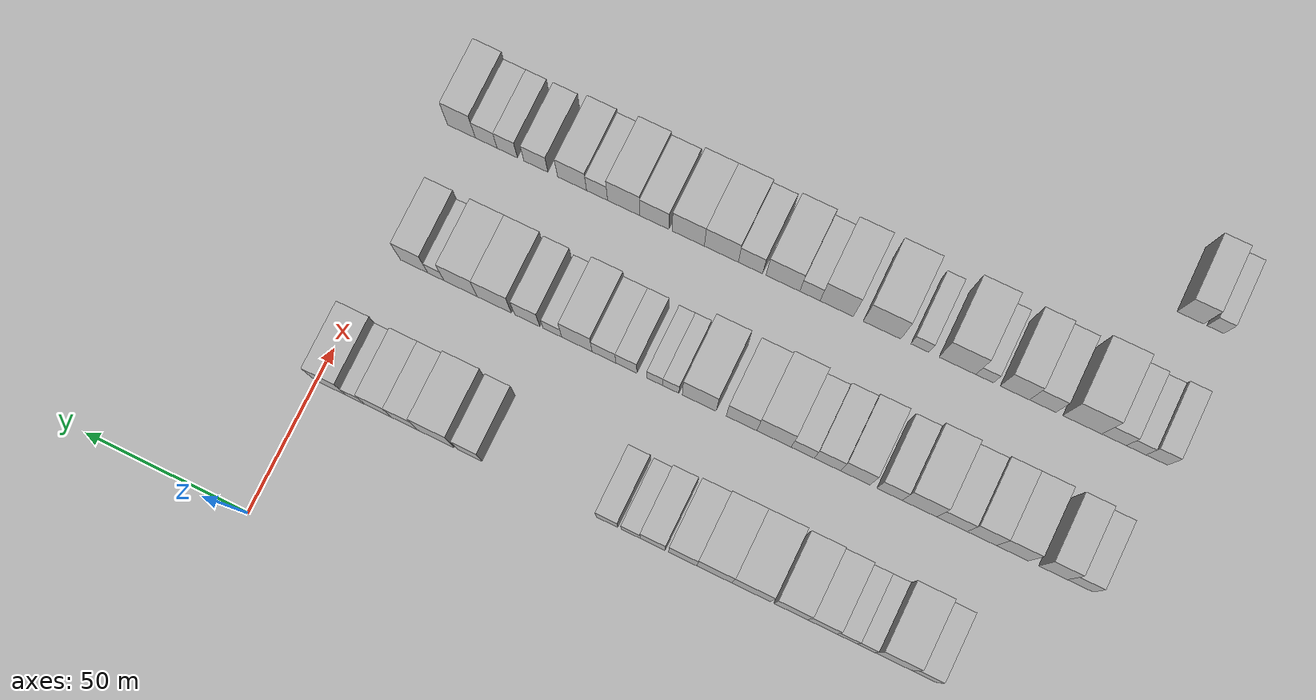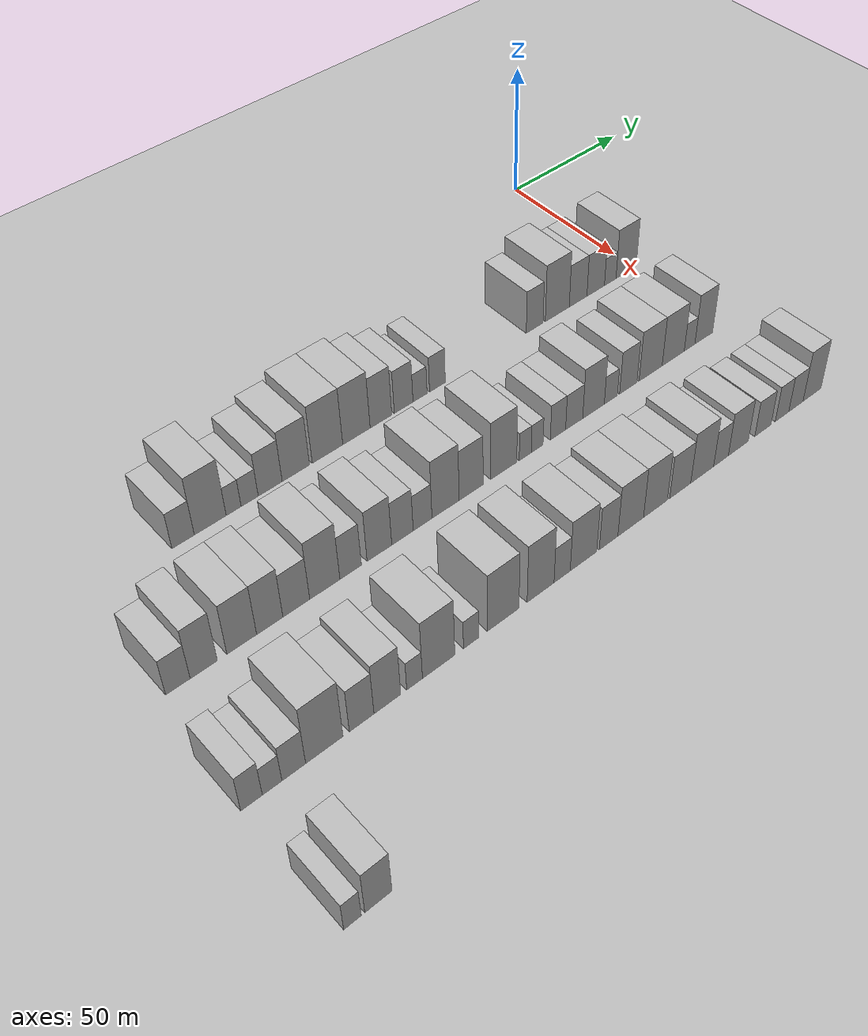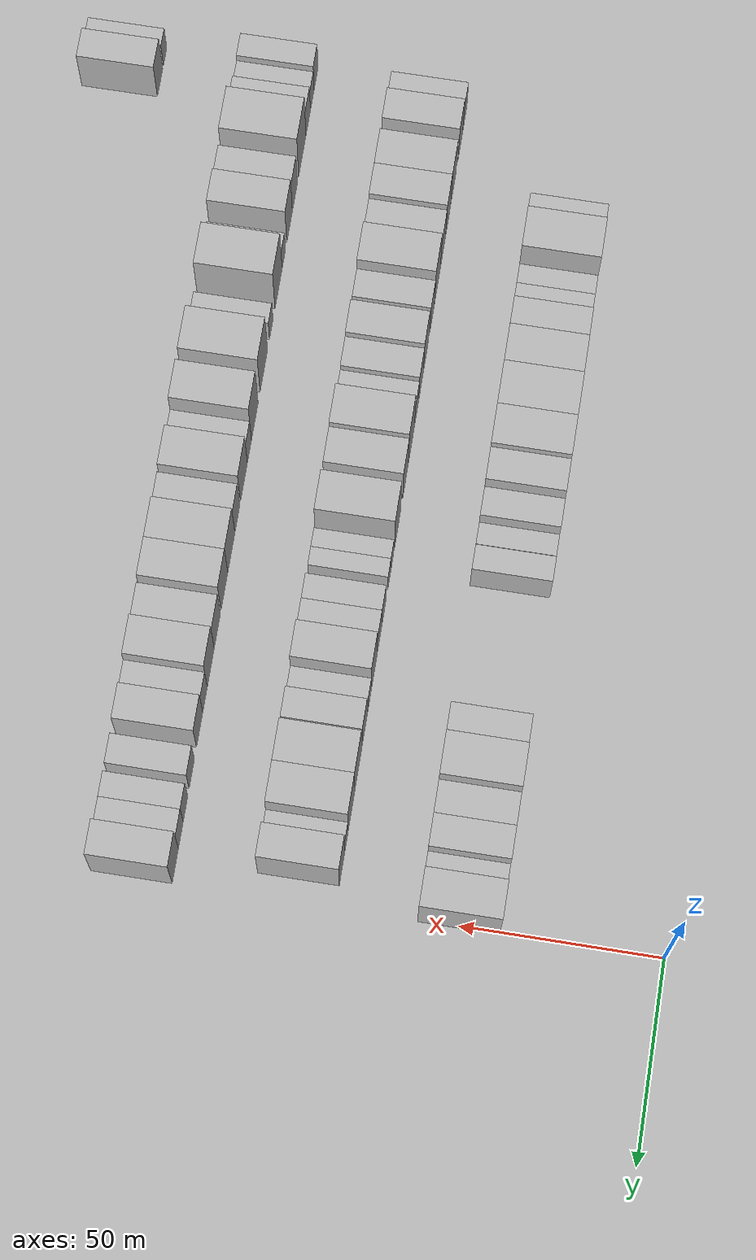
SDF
<sdf version="1.6">
 <world name="default">
  <include><name>ground_plane_1</name><uri>model://HANNAS_ground_plane</uri></include>
  <include>
   <name>ground_plane_2</name>
   <uri>model://HANNAS_ground_plane</uri>
   <pose>100 0 0  0 0 0</pose>
  </include>
  <model name="building_44">
   <static>1</static>
   <pose>50.0000 -181.8507 0 0.000000 0.000000 0.000000</pose>
   <link name="link">
    <pose>0 0 7.50 0 0 0</pose>
    <collision name="collision"><geometry><box><size>20.0000 7.4621 15.0000</size></box></geometry></collision>
    <visual name="visual">
     <cast_shadows>0</cast_shadows>
     <geometry><box><size>20.0000 7.4621 15.0000</size></box></geometry>
     <material>
      <script>
       <uri>model://HANNAS_wall/materials/scripts</uri>
       <uri>model://HANNAS_wall/materials/textures</uri>
       <name>vrc/HANNAS_wall</name>
      </script>
     </material>
    </visual>
   </link>
  </model>
  <model name="building_45">
   <static>1</static>
   <pose>50.0000 -172.7117 0 0.000000 0.000000 0.000000</pose>
   <link name="link">
    <pose>0 0 12.00 0 0 0</pose>
    <collision name="collision"><geometry><box><size>20.0000 10.8159 24.0000</size></box></geometry></collision>
    <visual name="visual">
     <cast_shadows>0</cast_shadows>
     <geometry><box><size>20.0000 10.8159 24.0000</size></box></geometry>
     <material>
      <script>
       <uri>model://HANNAS_wall/materials/scripts</uri>
       <uri>model://HANNAS_wall/materials/textures</uri>
       <name>vrc/HANNAS_wall</name>
      </script>
     </material>
    </visual>
   </link>
  </model>
  <model name="building_46">
   <static>1</static>
   <pose>50.0000 -164.7321 0 0.000000 0.000000 0.000000</pose>
   <link name="link">
    <pose>0 0 6.00 0 0 0</pose>
    <collision name="collision"><geometry><box><size>20.0000 5.1432 12.0000</size></box></geometry></collision>
    <visual name="visual">
     <cast_shadows>0</cast_shadows>
     <geometry><box><size>20.0000 5.1432 12.0000</size></box></geometry>
     <material>
      <script>
       <uri>model://HANNAS_wall/materials/scripts</uri>
       <uri>model://HANNAS_wall/materials/textures</uri>
       <name>vrc/HANNAS_wall</name>
      </script>
     </material>
    </visual>
   </link>
  </model>
  <model name="building_47">
   <static>1</static>
   <pose>50.0000 -159.1735 0 0.000000 0.000000 0.000000</pose>
   <link name="link">
    <pose>0 0 6.00 0 0 0</pose>
    <collision name="collision"><geometry><box><size>20.0000 5.9740 12.0000</size></box></geometry></collision>
    <visual name="visual">
     <cast_shadows>0</cast_shadows>
     <geometry><box><size>20.0000 5.9740 12.0000</size></box></geometry>
     <material>
      <script>
       <uri>model://HANNAS_wall/materials/scripts</uri>
       <uri>model://HANNAS_wall/materials/textures</uri>
       <name>vrc/HANNAS_wall</name>
      </script>
     </material>
    </visual>
   </link>
  </model>
  <model name="building_48">
   <static>1</static>
   <pose>50.0000 -151.9219 0 0.000000 0.000000 0.000000</pose>
   <link name="link">
    <pose>0 0 9.00 0 0 0</pose>
    <collision name="collision"><geometry><box><size>20.0000 8.5291 18.0000</size></box></geometry></collision>
    <visual name="visual">
     <cast_shadows>0</cast_shadows>
     <geometry><box><size>20.0000 8.5291 18.0000</size></box></geometry>
     <material>
      <script>
       <uri>model://HANNAS_wall/materials/scripts</uri>
       <uri>model://HANNAS_wall/materials/textures</uri>
       <name>vrc/HANNAS_wall</name>
      </script>
     </material>
    </visual>
   </link>
  </model>
  <model name="building_49">
   <static>1</static>
   <pose>50.0000 -142.6936 0 0.000000 0.000000 0.000000</pose>
   <link name="link">
    <pose>0 0 10.50 0 0 0</pose>
    <collision name="collision"><geometry><box><size>20.0000 9.9275 21.0000</size></box></geometry></collision>
    <visual name="visual">
     <cast_shadows>0</cast_shadows>
     <geometry><box><size>20.0000 9.9275 21.0000</size></box></geometry>
     <material>
      <script>
       <uri>model://HANNAS_wall/materials/scripts</uri>
       <uri>model://HANNAS_wall/materials/textures</uri>
       <name>vrc/HANNAS_wall</name>
      </script>
     </material>
    </visual>
   </link>
  </model>
  <model name="building_50">
   <static>1</static>
   <pose>50.0000 -131.0511 0 0.000000 0.000000 0.000000</pose>
   <link name="link">
    <pose>0 0 12.00 0 0 0</pose>
    <collision name="collision"><geometry><box><size>20.0000 11.3575 24.0000</size></box></geometry></collision>
    <visual name="visual">
     <cast_shadows>0</cast_shadows>
     <geometry><box><size>20.0000 11.3575 24.0000</size></box></geometry>
     <material>
      <script>
       <uri>model://HANNAS_wall/materials/scripts</uri>
       <uri>model://HANNAS_wall/materials/textures</uri>
       <name>vrc/HANNAS_wall</name>
      </script>
     </material>
    </visual>
   </link>
  </model>
  <model name="building_51">
   <static>1</static>
   <pose>50.0000 -120.1484 0 0.000000 0.000000 0.000000</pose>
   <link name="link">
    <pose>0 0 12.00 0 0 0</pose>
    <collision name="collision"><geometry><box><size>20.0000 10.4479 24.0000</size></box></geometry></collision>
    <visual name="visual">
     <cast_shadows>0</cast_shadows>
     <geometry><box><size>20.0000 10.4479 24.0000</size></box></geometry>
     <material>
      <script>
       <uri>model://HANNAS_wall/materials/scripts</uri>
       <uri>model://HANNAS_wall/materials/textures</uri>
       <name>vrc/HANNAS_wall</name>
      </script>
     </material>
    </visual>
   </link>
  </model>
  <model name="building_52">
   <static>1</static>
   <pose>50.0000 -110.7239 0 0.000000 0.000000 0.000000</pose>
   <link name="link">
    <pose>0 0 10.50 0 0 0</pose>
    <collision name="collision"><geometry><box><size>20.0000 8.4012 21.0000</size></box></geometry></collision>
    <visual name="visual">
     <cast_shadows>0</cast_shadows>
     <geometry><box><size>20.0000 8.4012 21.0000</size></box></geometry>
     <material>
      <script>
       <uri>model://HANNAS_wall/materials/scripts</uri>
       <uri>model://HANNAS_wall/materials/textures</uri>
       <name>vrc/HANNAS_wall</name>
      </script>
     </material>
    </visual>
   </link>
  </model>
  <model name="building_53">
   <static>1</static>
   <pose>50.0000 -101.8063 0 0.000000 0.000000 0.000000</pose>
   <link name="link">
    <pose>0 0 9.00 0 0 0</pose>
    <collision name="collision"><geometry><box><size>20.0000 7.4339 18.0000</size></box></geometry></collision>
    <visual name="visual">
     <cast_shadows>0</cast_shadows>
     <geometry><box><size>20.0000 7.4339 18.0000</size></box></geometry>
     <material>
      <script>
       <uri>model://HANNAS_wall/materials/scripts</uri>
       <uri>model://HANNAS_wall/materials/textures</uri>
       <name>vrc/HANNAS_wall</name>
      </script>
     </material>
    </visual>
   </link>
  </model>
  <model name="building_54">
   <static>1</static>
   <pose>50.0000 -95.2591 0 0.000000 0.000000 0.000000</pose>
   <link name="link">
    <pose>0 0 6.00 0 0 0</pose>
    <collision name="collision"><geometry><box><size>20.0000 5.6604 12.0000</size></box></geometry></collision>
    <visual name="visual">
     <cast_shadows>0</cast_shadows>
     <geometry><box><size>20.0000 5.6604 12.0000</size></box></geometry>
     <material>
      <script>
       <uri>model://HANNAS_wall/materials/scripts</uri>
       <uri>model://HANNAS_wall/materials/textures</uri>
       <name>vrc/HANNAS_wall</name>
      </script>
     </material>
    </visual>
   </link>
  </model>
  <model name="building_55">
   <static>1</static>
   <pose>50.0000 -88.2091 0 0.000000 0.000000 0.000000</pose>
   <link name="link">
    <pose>0 0 7.50 0 0 0</pose>
    <collision name="collision"><geometry><box><size>20.0000 6.4397 15.0000</size></box></geometry></collision>
    <visual name="visual">
     <cast_shadows>0</cast_shadows>
     <geometry><box><size>20.0000 6.4397 15.0000</size></box></geometry>
     <material>
      <script>
       <uri>model://HANNAS_wall/materials/scripts</uri>
       <uri>model://HANNAS_wall/materials/textures</uri>
       <name>vrc/HANNAS_wall</name>
      </script>
     </material>
    </visual>
   </link>
  </model>
  <model name="building_56">
   <static>1</static>
   <pose>50.0000 -46.7908 0 0.000000 0.000000 0.000000</pose>
   <link name="link">
    <pose>0 0 9.00 0 0 0</pose>
    <collision name="collision"><geometry><box><size>20.0000 7.4656 18.0000</size></box></geometry></collision>
    <visual name="visual">
     <cast_shadows>0</cast_shadows>
     <geometry><box><size>20.0000 7.4656 18.0000</size></box></geometry>
     <material>
      <script>
       <uri>model://HANNAS_wall/materials/scripts</uri>
       <uri>model://HANNAS_wall/materials/textures</uri>
       <name>vrc/HANNAS_wall</name>
      </script>
     </material>
    </visual>
   </link>
  </model>
  <model name="building_57">
   <static>1</static>
   <pose>50.0000 -36.6233 0 0.000000 0.000000 0.000000</pose>
   <link name="link">
    <pose>0 0 12.00 0 0 0</pose>
    <collision name="collision"><geometry><box><size>20.0000 10.8695 24.0000</size></box></geometry></collision>
    <visual name="visual">
     <cast_shadows>0</cast_shadows>
     <geometry><box><size>20.0000 10.8695 24.0000</size></box></geometry>
     <material>
      <script>
       <uri>model://HANNAS_wall/materials/scripts</uri>
       <uri>model://HANNAS_wall/materials/textures</uri>
       <name>vrc/HANNAS_wall</name>
      </script>
     </material>
    </visual>
   </link>
  </model>
  <model name="building_58">
   <static>1</static>
   <pose>50.0000 -27.0975 0 0.000000 0.000000 0.000000</pose>
   <link name="link">
    <pose>0 0 9.00 0 0 0</pose>
    <collision name="collision"><geometry><box><size>20.0000 8.1821 18.0000</size></box></geometry></collision>
    <visual name="visual">
     <cast_shadows>0</cast_shadows>
     <geometry><box><size>20.0000 8.1821 18.0000</size></box></geometry>
     <material>
      <script>
       <uri>model://HANNAS_wall/materials/scripts</uri>
       <uri>model://HANNAS_wall/materials/textures</uri>
       <name>vrc/HANNAS_wall</name>
      </script>
     </material>
    </visual>
   </link>
  </model>
  <model name="building_59">
   <static>1</static>
   <pose>50.0000 -18.8867 0 0.000000 0.000000 0.000000</pose>
   <link name="link">
    <pose>0 0 9.00 0 0 0</pose>
    <collision name="collision"><geometry><box><size>20.0000 8.2396 18.0000</size></box></geometry></collision>
    <visual name="visual">
     <cast_shadows>0</cast_shadows>
     <geometry><box><size>20.0000 8.2396 18.0000</size></box></geometry>
     <material>
      <script>
       <uri>model://HANNAS_wall/materials/scripts</uri>
       <uri>model://HANNAS_wall/materials/textures</uri>
       <name>vrc/HANNAS_wall</name>
      </script>
     </material>
    </visual>
   </link>
  </model>
  <model name="building_60">
   <static>1</static>
   <pose>50.0000 -12.0094 0 0.000000 0.000000 0.000000</pose>
   <link name="link">
    <pose>0 0 6.00 0 0 0</pose>
    <collision name="collision"><geometry><box><size>20.0000 5.5149 12.0000</size></box></geometry></collision>
    <visual name="visual">
     <cast_shadows>0</cast_shadows>
     <geometry><box><size>20.0000 5.5149 12.0000</size></box></geometry>
     <material>
      <script>
       <uri>model://HANNAS_wall/materials/scripts</uri>
       <uri>model://HANNAS_wall/materials/textures</uri>
       <name>vrc/HANNAS_wall</name>
      </script>
     </material>
    </visual>
   </link>
  </model>
  <model name="building_61">
   <static>1</static>
   <pose>50.0000 -4.3880 0 0.000000 0.000000 0.000000</pose>
   <link name="link">
    <pose>0 0 10.50 0 0 0</pose>
    <collision name="collision"><geometry><box><size>20.0000 9.7278 21.0000</size></box></geometry></collision>
    <visual name="visual">
     <cast_shadows>0</cast_shadows>
     <geometry><box><size>20.0000 9.7278 21.0000</size></box></geometry>
     <material>
      <script>
       <uri>model://HANNAS_wall/materials/scripts</uri>
       <uri>model://HANNAS_wall/materials/textures</uri>
       <name>vrc/HANNAS_wall</name>
      </script>
     </material>
    </visual>
   </link>
  </model>
  <model name="building_172">
   <static>1</static>
   <pose>90.0000 -209.5371 0 0.000000 0.000000 0.000000</pose>
   <link name="link">
    <pose>0 0 7.50 0 0 0</pose>
    <collision name="collision"><geometry><box><size>20.0000 7.4824 15.0000</size></box></geometry></collision>
    <visual name="visual">
     <cast_shadows>0</cast_shadows>
     <geometry><box><size>20.0000 7.4824 15.0000</size></box></geometry>
     <material>
      <script>
       <uri>model://HANNAS_wall/materials/scripts</uri>
       <uri>model://HANNAS_wall/materials/textures</uri>
       <name>vrc/HANNAS_wall</name>
      </script>
     </material>
    </visual>
   </link>
  </model>
  <model name="building_173">
   <static>1</static>
   <pose>90.0000 -201.5894 0 0.000000 0.000000 0.000000</pose>
   <link name="link">
    <pose>0 0 10.50 0 0 0</pose>
    <collision name="collision"><geometry><box><size>20.0000 8.4130 21.0000</size></box></geometry></collision>
    <visual name="visual">
     <cast_shadows>0</cast_shadows>
     <geometry><box><size>20.0000 8.4130 21.0000</size></box></geometry>
     <material>
      <script>
       <uri>model://HANNAS_wall/materials/scripts</uri>
       <uri>model://HANNAS_wall/materials/textures</uri>
       <name>vrc/HANNAS_wall</name>
      </script>
     </material>
    </visual>
   </link>
  </model>
  <model name="building_174">
   <static>1</static>
   <pose>90.0000 -189.6379 0 0.000000 0.000000 0.000000</pose>
   <link name="link">
    <pose>0 0 10.50 0 0 0</pose>
    <collision name="collision"><geometry><box><size>20.0000 9.4900 21.0000</size></box></geometry></collision>
    <visual name="visual">
     <cast_shadows>0</cast_shadows>
     <geometry><box><size>20.0000 9.4900 21.0000</size></box></geometry>
     <material>
      <script>
       <uri>model://HANNAS_wall/materials/scripts</uri>
       <uri>model://HANNAS_wall/materials/textures</uri>
       <name>vrc/HANNAS_wall</name>
      </script>
     </material>
    </visual>
   </link>
  </model>
  <model name="building_175">
   <static>1</static>
   <pose>90.0000 -180.6091 0 0.000000 0.000000 0.000000</pose>
   <link name="link">
    <pose>0 0 10.50 0 0 0</pose>
    <collision name="collision"><geometry><box><size>20.0000 8.5676 21.0000</size></box></geometry></collision>
    <visual name="visual">
     <cast_shadows>0</cast_shadows>
     <geometry><box><size>20.0000 8.5676 21.0000</size></box></geometry>
     <material>
      <script>
       <uri>model://HANNAS_wall/materials/scripts</uri>
       <uri>model://HANNAS_wall/materials/textures</uri>
       <name>vrc/HANNAS_wall</name>
      </script>
     </material>
    </visual>
   </link>
  </model>
  <model name="building_176">
   <static>1</static>
   <pose>90.0000 -171.8597 0 0.000000 0.000000 0.000000</pose>
   <link name="link">
    <pose>0 0 9.00 0 0 0</pose>
    <collision name="collision"><geometry><box><size>20.0000 8.9312 18.0000</size></box></geometry></collision>
    <visual name="visual">
     <cast_shadows>0</cast_shadows>
     <geometry><box><size>20.0000 8.9312 18.0000</size></box></geometry>
     <material>
      <script>
       <uri>model://HANNAS_wall/materials/scripts</uri>
       <uri>model://HANNAS_wall/materials/textures</uri>
       <name>vrc/HANNAS_wall</name>
      </script>
     </material>
    </visual>
   </link>
  </model>
  <model name="building_177">
   <static>1</static>
   <pose>90.0000 -162.2467 0 0.000000 0.000000 0.000000</pose>
   <link name="link">
    <pose>0 0 12.00 0 0 0</pose>
    <collision name="collision"><geometry><box><size>20.0000 10.2948 24.0000</size></box></geometry></collision>
    <visual name="visual">
     <cast_shadows>0</cast_shadows>
     <geometry><box><size>20.0000 10.2948 24.0000</size></box></geometry>
     <material>
      <script>
       <uri>model://HANNAS_wall/materials/scripts</uri>
       <uri>model://HANNAS_wall/materials/textures</uri>
       <name>vrc/HANNAS_wall</name>
      </script>
     </material>
    </visual>
   </link>
  </model>
  <model name="building_178">
   <static>1</static>
   <pose>90.0000 -153.3565 0 0.000000 0.000000 0.000000</pose>
   <link name="link">
    <pose>0 0 9.00 0 0 0</pose>
    <collision name="collision"><geometry><box><size>20.0000 7.4857 18.0000</size></box></geometry></collision>
    <visual name="visual">
     <cast_shadows>0</cast_shadows>
     <geometry><box><size>20.0000 7.4857 18.0000</size></box></geometry>
     <material>
      <script>
       <uri>model://HANNAS_wall/materials/scripts</uri>
       <uri>model://HANNAS_wall/materials/textures</uri>
       <name>vrc/HANNAS_wall</name>
      </script>
     </material>
    </visual>
   </link>
  </model>
  <model name="building_179">
   <static>1</static>
   <pose>90.0000 -143.2158 0 0.000000 0.000000 0.000000</pose>
   <link name="link">
    <pose>0 0 10.50 0 0 0</pose>
    <collision name="collision"><geometry><box><size>20.0000 8.7957 21.0000</size></box></geometry></collision>
    <visual name="visual">
     <cast_shadows>0</cast_shadows>
     <geometry><box><size>20.0000 8.7957 21.0000</size></box></geometry>
     <material>
      <script>
       <uri>model://HANNAS_wall/materials/scripts</uri>
       <uri>model://HANNAS_wall/materials/textures</uri>
       <name>vrc/HANNAS_wall</name>
      </script>
     </material>
    </visual>
   </link>
  </model>
  <model name="building_180">
   <static>1</static>
   <pose>90.0000 -134.9126 0 0.000000 0.000000 0.000000</pose>
   <link name="link">
    <pose>0 0 9.00 0 0 0</pose>
    <collision name="collision"><geometry><box><size>20.0000 7.8108 18.0000</size></box></geometry></collision>
    <visual name="visual">
     <cast_shadows>0</cast_shadows>
     <geometry><box><size>20.0000 7.8108 18.0000</size></box></geometry>
     <material>
      <script>
       <uri>model://HANNAS_wall/materials/scripts</uri>
       <uri>model://HANNAS_wall/materials/textures</uri>
       <name>vrc/HANNAS_wall</name>
      </script>
     </material>
    </visual>
   </link>
  </model>
  <model name="building_181">
   <static>1</static>
   <pose>90.0000 -127.5355 0 0.000000 0.000000 0.000000</pose>
   <link name="link">
    <pose>0 0 7.50 0 0 0</pose>
    <collision name="collision"><geometry><box><size>20.0000 6.9433 15.0000</size></box></geometry></collision>
    <visual name="visual">
     <cast_shadows>0</cast_shadows>
     <geometry><box><size>20.0000 6.9433 15.0000</size></box></geometry>
     <material>
      <script>
       <uri>model://HANNAS_wall/materials/scripts</uri>
       <uri>model://HANNAS_wall/materials/textures</uri>
       <name>vrc/HANNAS_wall</name>
      </script>
     </material>
    </visual>
   </link>
  </model>
  <model name="building_182">
   <static>1</static>
   <pose>90.0000 -118.9391 0 0.000000 0.000000 0.000000</pose>
   <link name="link">
    <pose>0 0 12.00 0 0 0</pose>
    <collision name="collision"><geometry><box><size>20.0000 10.2496 24.0000</size></box></geometry></collision>
    <visual name="visual">
     <cast_shadows>0</cast_shadows>
     <geometry><box><size>20.0000 10.2496 24.0000</size></box></geometry>
     <material>
      <script>
       <uri>model://HANNAS_wall/materials/scripts</uri>
       <uri>model://HANNAS_wall/materials/textures</uri>
       <name>vrc/HANNAS_wall</name>
      </script>
     </material>
    </visual>
   </link>
  </model>
  <model name="building_183">
   <static>1</static>
   <pose>90.0000 -109.1921 0 0.000000 0.000000 0.000000</pose>
   <link name="link">
    <pose>0 0 10.50 0 0 0</pose>
    <collision name="collision"><geometry><box><size>20.0000 9.2444 21.0000</size></box></geometry></collision>
    <visual name="visual">
     <cast_shadows>0</cast_shadows>
     <geometry><box><size>20.0000 9.2444 21.0000</size></box></geometry>
     <material>
      <script>
       <uri>model://HANNAS_wall/materials/scripts</uri>
       <uri>model://HANNAS_wall/materials/textures</uri>
       <name>vrc/HANNAS_wall</name>
      </script>
     </material>
    </visual>
   </link>
  </model>
  <model name="building_184">
   <static>1</static>
   <pose>90.0000 -96.4363 0 0.000000 0.000000 0.000000</pose>
   <link name="link">
    <pose>0 0 12.00 0 0 0</pose>
    <collision name="collision"><geometry><box><size>20.0000 10.2672 24.0000</size></box></geometry></collision>
    <visual name="visual">
     <cast_shadows>0</cast_shadows>
     <geometry><box><size>20.0000 10.2672 24.0000</size></box></geometry>
     <material>
      <script>
       <uri>model://HANNAS_wall/materials/scripts</uri>
       <uri>model://HANNAS_wall/materials/textures</uri>
       <name>vrc/HANNAS_wall</name>
      </script>
     </material>
    </visual>
   </link>
  </model>
  <model name="building_185">
   <static>1</static>
   <pose>90.0000 -87.8635 0 0.000000 0.000000 0.000000</pose>
   <link name="link">
    <pose>0 0 6.00 0 0 0</pose>
    <collision name="collision"><geometry><box><size>20.0000 4.8784 12.0000</size></box></geometry></collision>
    <visual name="visual">
     <cast_shadows>0</cast_shadows>
     <geometry><box><size>20.0000 4.8784 12.0000</size></box></geometry>
     <material>
      <script>
       <uri>model://HANNAS_wall/materials/scripts</uri>
       <uri>model://HANNAS_wall/materials/textures</uri>
       <name>vrc/HANNAS_wall</name>
      </script>
     </material>
    </visual>
   </link>
  </model>
  <model name="building_186">
   <static>1</static>
   <pose>90.0000 -83.0223 0 0.000000 0.000000 0.000000</pose>
   <link name="link">
    <pose>0 0 6.00 0 0 0</pose>
    <collision name="collision"><geometry><box><size>20.0000 4.8039 12.0000</size></box></geometry></collision>
    <visual name="visual">
     <cast_shadows>0</cast_shadows>
     <geometry><box><size>20.0000 4.8039 12.0000</size></box></geometry>
     <material>
      <script>
       <uri>model://HANNAS_wall/materials/scripts</uri>
       <uri>model://HANNAS_wall/materials/textures</uri>
       <name>vrc/HANNAS_wall</name>
      </script>
     </material>
    </visual>
   </link>
  </model>
  <model name="building_187">
   <static>1</static>
   <pose>90.0000 -74.4276 0 0.000000 0.000000 0.000000</pose>
   <link name="link">
    <pose>0 0 7.50 0 0 0</pose>
    <collision name="collision"><geometry><box><size>20.0000 6.3855 15.0000</size></box></geometry></collision>
    <visual name="visual">
     <cast_shadows>0</cast_shadows>
     <geometry><box><size>20.0000 6.3855 15.0000</size></box></geometry>
     <material>
      <script>
       <uri>model://HANNAS_wall/materials/scripts</uri>
       <uri>model://HANNAS_wall/materials/textures</uri>
       <name>vrc/HANNAS_wall</name>
      </script>
     </material>
    </visual>
   </link>
  </model>
  <model name="building_188">
   <static>1</static>
   <pose>90.0000 -67.6226 0 0.000000 0.000000 0.000000</pose>
   <link name="link">
    <pose>0 0 7.50 0 0 0</pose>
    <collision name="collision"><geometry><box><size>20.0000 7.2245 15.0000</size></box></geometry></collision>
    <visual name="visual">
     <cast_shadows>0</cast_shadows>
     <geometry><box><size>20.0000 7.2245 15.0000</size></box></geometry>
     <material>
      <script>
       <uri>model://HANNAS_wall/materials/scripts</uri>
       <uri>model://HANNAS_wall/materials/textures</uri>
       <name>vrc/HANNAS_wall</name>
      </script>
     </material>
    </visual>
   </link>
  </model>
  <model name="building_189">
   <static>1</static>
   <pose>90.0000 -59.3624 0 0.000000 0.000000 0.000000</pose>
   <link name="link">
    <pose>0 0 10.50 0 0 0</pose>
    <collision name="collision"><geometry><box><size>20.0000 9.2959 21.0000</size></box></geometry></collision>
    <visual name="visual">
     <cast_shadows>0</cast_shadows>
     <geometry><box><size>20.0000 9.2959 21.0000</size></box></geometry>
     <material>
      <script>
       <uri>model://HANNAS_wall/materials/scripts</uri>
       <uri>model://HANNAS_wall/materials/textures</uri>
       <name>vrc/HANNAS_wall</name>
      </script>
     </material>
    </visual>
   </link>
  </model>
  <model name="building_190">
   <static>1</static>
   <pose>90.0000 -51.8709 0 0.000000 0.000000 0.000000</pose>
   <link name="link">
    <pose>0 0 6.00 0 0 0</pose>
    <collision name="collision"><geometry><box><size>20.0000 5.6871 12.0000</size></box></geometry></collision>
    <visual name="visual">
     <cast_shadows>0</cast_shadows>
     <geometry><box><size>20.0000 5.6871 12.0000</size></box></geometry>
     <material>
      <script>
       <uri>model://HANNAS_wall/materials/scripts</uri>
       <uri>model://HANNAS_wall/materials/textures</uri>
       <name>vrc/HANNAS_wall</name>
      </script>
     </material>
    </visual>
   </link>
  </model>
  <model name="building_191">
   <static>1</static>
   <pose>90.0000 -44.1942 0 0.000000 0.000000 0.000000</pose>
   <link name="link">
    <pose>0 0 9.00 0 0 0</pose>
    <collision name="collision"><geometry><box><size>20.0000 7.6661 18.0000</size></box></geometry></collision>
    <visual name="visual">
     <cast_shadows>0</cast_shadows>
     <geometry><box><size>20.0000 7.6661 18.0000</size></box></geometry>
     <material>
      <script>
       <uri>model://HANNAS_wall/materials/scripts</uri>
       <uri>model://HANNAS_wall/materials/textures</uri>
       <name>vrc/HANNAS_wall</name>
      </script>
     </material>
    </visual>
   </link>
  </model>
  <model name="building_192">
   <static>1</static>
   <pose>90.0000 -34.1247 0 0.000000 0.000000 0.000000</pose>
   <link name="link">
    <pose>0 0 10.50 0 0 0</pose>
    <collision name="collision"><geometry><box><size>20.0000 10.4730 21.0000</size></box></geometry></collision>
    <visual name="visual">
     <cast_shadows>0</cast_shadows>
     <geometry><box><size>20.0000 10.4730 21.0000</size></box></geometry>
     <material>
      <script>
       <uri>model://HANNAS_wall/materials/scripts</uri>
       <uri>model://HANNAS_wall/materials/textures</uri>
       <name>vrc/HANNAS_wall</name>
      </script>
     </material>
    </visual>
   </link>
  </model>
  <model name="building_193">
   <static>1</static>
   <pose>90.0000 -23.7587 0 0.000000 0.000000 0.000000</pose>
   <link name="link">
    <pose>0 0 10.50 0 0 0</pose>
    <collision name="collision"><geometry><box><size>20.0000 10.2590 21.0000</size></box></geometry></collision>
    <visual name="visual">
     <cast_shadows>0</cast_shadows>
     <geometry><box><size>20.0000 10.2590 21.0000</size></box></geometry>
     <material>
      <script>
       <uri>model://HANNAS_wall/materials/scripts</uri>
       <uri>model://HANNAS_wall/materials/textures</uri>
       <name>vrc/HANNAS_wall</name>
      </script>
     </material>
    </visual>
   </link>
  </model>
  <model name="building_194">
   <static>1</static>
   <pose>90.0000 -16.1245 0 0.000000 0.000000 0.000000</pose>
   <link name="link">
    <pose>0 0 6.00 0 0 0</pose>
    <collision name="collision"><geometry><box><size>20.0000 5.0093 12.0000</size></box></geometry></collision>
    <visual name="visual">
     <cast_shadows>0</cast_shadows>
     <geometry><box><size>20.0000 5.0093 12.0000</size></box></geometry>
     <material>
      <script>
       <uri>model://HANNAS_wall/materials/scripts</uri>
       <uri>model://HANNAS_wall/materials/textures</uri>
       <name>vrc/HANNAS_wall</name>
      </script>
     </material>
    </visual>
   </link>
  </model>
  <model name="building_195">
   <static>1</static>
   <pose>90.0000 -9.4056 0 0.000000 0.000000 0.000000</pose>
   <link name="link">
    <pose>0 0 10.50 0 0 0</pose>
    <collision name="collision"><geometry><box><size>20.0000 8.4286 21.0000</size></box></geometry></collision>
    <visual name="visual">
     <cast_shadows>0</cast_shadows>
     <geometry><box><size>20.0000 8.4286 21.0000</size></box></geometry>
     <material>
      <script>
       <uri>model://HANNAS_wall/materials/scripts</uri>
       <uri>model://HANNAS_wall/materials/textures</uri>
       <name>vrc/HANNAS_wall</name>
      </script>
     </material>
    </visual>
   </link>
  </model>
  <model name="building_305">
   <static>1</static>
   <pose>130.0000 -214.5552 0 0.000000 0.000000 0.000000</pose>
   <link name="link">
    <pose>0 0 7.50 0 0 0</pose>
    <collision name="collision"><geometry><box><size>20.0000 6.3540 15.0000</size></box></geometry></collision>
    <visual name="visual">
     <cast_shadows>0</cast_shadows>
     <geometry><box><size>20.0000 6.3540 15.0000</size></box></geometry>
     <material>
      <script>
       <uri>model://HANNAS_wall/materials/scripts</uri>
       <uri>model://HANNAS_wall/materials/textures</uri>
       <name>vrc/HANNAS_wall</name>
      </script>
     </material>
    </visual>
   </link>
  </model>
  <model name="building_306">
   <static>1</static>
   <pose>130.0000 -208.4741 0 0.000000 0.000000 0.000000</pose>
   <link name="link">
    <pose>0 0 6.00 0 0 0</pose>
    <collision name="collision"><geometry><box><size>20.0000 5.8082 12.0000</size></box></geometry></collision>
    <visual name="visual">
     <cast_shadows>0</cast_shadows>
     <geometry><box><size>20.0000 5.8082 12.0000</size></box></geometry>
     <material>
      <script>
       <uri>model://HANNAS_wall/materials/scripts</uri>
       <uri>model://HANNAS_wall/materials/textures</uri>
       <name>vrc/HANNAS_wall</name>
      </script>
     </material>
    </visual>
   </link>
  </model>
  <model name="building_307">
   <static>1</static>
   <pose>130.0000 -201.9699 0 0.000000 0.000000 0.000000</pose>
   <link name="link">
    <pose>0 0 7.50 0 0 0</pose>
    <collision name="collision"><geometry><box><size>20.0000 7.2002 15.0000</size></box></geometry></collision>
    <visual name="visual">
     <cast_shadows>0</cast_shadows>
     <geometry><box><size>20.0000 7.2002 15.0000</size></box></geometry>
     <material>
      <script>
       <uri>model://HANNAS_wall/materials/scripts</uri>
       <uri>model://HANNAS_wall/materials/textures</uri>
       <name>vrc/HANNAS_wall</name>
      </script>
     </material>
    </visual>
   </link>
  </model>
  <model name="building_308">
   <static>1</static>
   <pose>130.0000 -192.5753 0 0.000000 0.000000 0.000000</pose>
   <link name="link">
    <pose>0 0 12.00 0 0 0</pose>
    <collision name="collision"><geometry><box><size>20.0000 11.5890 24.0000</size></box></geometry></collision>
    <visual name="visual">
     <cast_shadows>0</cast_shadows>
     <geometry><box><size>20.0000 11.5890 24.0000</size></box></geometry>
     <material>
      <script>
       <uri>model://HANNAS_wall/materials/scripts</uri>
       <uri>model://HANNAS_wall/materials/textures</uri>
       <name>vrc/HANNAS_wall</name>
      </script>
     </material>
    </visual>
   </link>
  </model>
  <model name="building_309">
   <static>1</static>
   <pose>130.0000 -180.8453 0 0.000000 0.000000 0.000000</pose>
   <link name="link">
    <pose>0 0 9.00 0 0 0</pose>
    <collision name="collision"><geometry><box><size>20.0000 7.8711 18.0000</size></box></geometry></collision>
    <visual name="visual">
     <cast_shadows>0</cast_shadows>
     <geometry><box><size>20.0000 7.8711 18.0000</size></box></geometry>
     <material>
      <script>
       <uri>model://HANNAS_wall/materials/scripts</uri>
       <uri>model://HANNAS_wall/materials/textures</uri>
       <name>vrc/HANNAS_wall</name>
      </script>
     </material>
    </visual>
   </link>
  </model>
  <model name="building_310">
   <static>1</static>
   <pose>130.0000 -172.5428 0 0.000000 0.000000 0.000000</pose>
   <link name="link">
    <pose>0 0 10.50 0 0 0</pose>
    <collision name="collision"><geometry><box><size>20.0000 8.7338 21.0000</size></box></geometry></collision>
    <visual name="visual">
     <cast_shadows>0</cast_shadows>
     <geometry><box><size>20.0000 8.7338 21.0000</size></box></geometry>
     <material>
      <script>
       <uri>model://HANNAS_wall/materials/scripts</uri>
       <uri>model://HANNAS_wall/materials/textures</uri>
       <name>vrc/HANNAS_wall</name>
      </script>
     </material>
    </visual>
   </link>
  </model>
  <model name="building_311">
   <static>1</static>
   <pose>130.0000 -163.5490 0 0.000000 0.000000 0.000000</pose>
   <link name="link">
    <pose>0 0 6.00 0 0 0</pose>
    <collision name="collision"><geometry><box><size>20.0000 5.2538 12.0000</size></box></geometry></collision>
    <visual name="visual">
     <cast_shadows>0</cast_shadows>
     <geometry><box><size>20.0000 5.2538 12.0000</size></box></geometry>
     <material>
      <script>
       <uri>model://HANNAS_wall/materials/scripts</uri>
       <uri>model://HANNAS_wall/materials/textures</uri>
       <name>vrc/HANNAS_wall</name>
      </script>
     </material>
    </visual>
   </link>
  </model>
  <model name="building_312">
   <static>1</static>
   <pose>130.0000 -155.4035 0 0.000000 0.000000 0.000000</pose>
   <link name="link">
    <pose>0 0 12.00 0 0 0</pose>
    <collision name="collision"><geometry><box><size>20.0000 11.0373 24.0000</size></box></geometry></collision>
    <visual name="visual">
     <cast_shadows>0</cast_shadows>
     <geometry><box><size>20.0000 11.0373 24.0000</size></box></geometry>
     <material>
      <script>
       <uri>model://HANNAS_wall/materials/scripts</uri>
       <uri>model://HANNAS_wall/materials/textures</uri>
       <name>vrc/HANNAS_wall</name>
      </script>
     </material>
    </visual>
   </link>
  </model>
  <model name="building_313">
   <static>1</static>
   <pose>130.0000 -144.1601 0 0.000000 0.000000 0.000000</pose>
   <link name="link">
    <pose>0 0 6.00 0 0 0</pose>
    <collision name="collision"><geometry><box><size>20.0000 5.4494 12.0000</size></box></geometry></collision>
    <visual name="visual">
     <cast_shadows>0</cast_shadows>
     <geometry><box><size>20.0000 5.4494 12.0000</size></box></geometry>
     <material>
      <script>
       <uri>model://HANNAS_wall/materials/scripts</uri>
       <uri>model://HANNAS_wall/materials/textures</uri>
       <name>vrc/HANNAS_wall</name>
      </script>
     </material>
    </visual>
   </link>
  </model>
  <model name="building_314">
   <static>1</static>
   <pose>130.0000 -132.7552 0 0.000000 0.000000 0.000000</pose>
   <link name="link">
    <pose>0 0 12.00 0 0 0</pose>
    <collision name="collision"><geometry><box><size>20.0000 11.3603 24.0000</size></box></geometry></collision>
    <visual name="visual">
     <cast_shadows>0</cast_shadows>
     <geometry><box><size>20.0000 11.3603 24.0000</size></box></geometry>
     <material>
      <script>
       <uri>model://HANNAS_wall/materials/scripts</uri>
       <uri>model://HANNAS_wall/materials/textures</uri>
       <name>vrc/HANNAS_wall</name>
      </script>
     </material>
    </visual>
   </link>
  </model>
  <model name="building_315">
   <static>1</static>
   <pose>130.0000 -119.0472 0 0.000000 0.000000 0.000000</pose>
   <link name="link">
    <pose>0 0 12.00 0 0 0</pose>
    <collision name="collision"><geometry><box><size>20.0000 10.0557 24.0000</size></box></geometry></collision>
    <visual name="visual">
     <cast_shadows>0</cast_shadows>
     <geometry><box><size>20.0000 10.0557 24.0000</size></box></geometry>
     <material>
      <script>
       <uri>model://HANNAS_wall/materials/scripts</uri>
       <uri>model://HANNAS_wall/materials/textures</uri>
       <name>vrc/HANNAS_wall</name>
      </script>
     </material>
    </visual>
   </link>
  </model>
  <model name="building_316">
   <static>1</static>
   <pose>130.0000 -110.9442 0 0.000000 0.000000 0.000000</pose>
   <link name="link">
    <pose>0 0 7.50 0 0 0</pose>
    <collision name="collision"><geometry><box><size>20.0000 6.1502 15.0000</size></box></geometry></collision>
    <visual name="visual">
     <cast_shadows>0</cast_shadows>
     <geometry><box><size>20.0000 6.1502 15.0000</size></box></geometry>
     <material>
      <script>
       <uri>model://HANNAS_wall/materials/scripts</uri>
       <uri>model://HANNAS_wall/materials/textures</uri>
       <name>vrc/HANNAS_wall</name>
      </script>
     </material>
    </visual>
   </link>
  </model>
  <model name="building_317">
   <static>1</static>
   <pose>130.0000 -102.7257 0 0.000000 0.000000 0.000000</pose>
   <link name="link">
    <pose>0 0 10.50 0 0 0</pose>
    <collision name="collision"><geometry><box><size>20.0000 10.2869 21.0000</size></box></geometry></collision>
    <visual name="visual">
     <cast_shadows>0</cast_shadows>
     <geometry><box><size>20.0000 10.2869 21.0000</size></box></geometry>
     <material>
      <script>
       <uri>model://HANNAS_wall/materials/scripts</uri>
       <uri>model://HANNAS_wall/materials/textures</uri>
       <name>vrc/HANNAS_wall</name>
      </script>
     </material>
    </visual>
   </link>
  </model>
  <model name="building_318">
   <static>1</static>
   <pose>130.0000 -92.8877 0 0.000000 0.000000 0.000000</pose>
   <link name="link">
    <pose>0 0 9.00 0 0 0</pose>
    <collision name="collision"><geometry><box><size>20.0000 7.3889 18.0000</size></box></geometry></collision>
    <visual name="visual">
     <cast_shadows>0</cast_shadows>
     <geometry><box><size>20.0000 7.3889 18.0000</size></box></geometry>
     <material>
      <script>
       <uri>model://HANNAS_wall/materials/scripts</uri>
       <uri>model://HANNAS_wall/materials/textures</uri>
       <name>vrc/HANNAS_wall</name>
      </script>
     </material>
    </visual>
   </link>
  </model>
  <model name="building_319">
   <static>1</static>
   <pose>130.0000 -83.9954 0 0.000000 0.000000 0.000000</pose>
   <link name="link">
    <pose>0 0 10.50 0 0 0</pose>
    <collision name="collision"><geometry><box><size>20.0000 10.3957 21.0000</size></box></geometry></collision>
    <visual name="visual">
     <cast_shadows>0</cast_shadows>
     <geometry><box><size>20.0000 10.3957 21.0000</size></box></geometry>
     <material>
      <script>
       <uri>model://HANNAS_wall/materials/scripts</uri>
       <uri>model://HANNAS_wall/materials/textures</uri>
       <name>vrc/HANNAS_wall</name>
      </script>
     </material>
    </visual>
   </link>
  </model>
  <model name="building_320">
   <static>1</static>
   <pose>130.0000 -73.8704 0 0.000000 0.000000 0.000000</pose>
   <link name="link">
    <pose>0 0 10.50 0 0 0</pose>
    <collision name="collision"><geometry><box><size>20.0000 9.8544 21.0000</size></box></geometry></collision>
    <visual name="visual">
     <cast_shadows>0</cast_shadows>
     <geometry><box><size>20.0000 9.8544 21.0000</size></box></geometry>
     <material>
      <script>
       <uri>model://HANNAS_wall/materials/scripts</uri>
       <uri>model://HANNAS_wall/materials/textures</uri>
       <name>vrc/HANNAS_wall</name>
      </script>
     </material>
    </visual>
   </link>
  </model>
  <model name="building_321">
   <static>1</static>
   <pose>130.0000 -63.4724 0 0.000000 0.000000 0.000000</pose>
   <link name="link">
    <pose>0 0 9.00 0 0 0</pose>
    <collision name="collision"><geometry><box><size>20.0000 8.9416 18.0000</size></box></geometry></collision>
    <visual name="visual">
     <cast_shadows>0</cast_shadows>
     <geometry><box><size>20.0000 8.9416 18.0000</size></box></geometry>
     <material>
      <script>
       <uri>model://HANNAS_wall/materials/scripts</uri>
       <uri>model://HANNAS_wall/materials/textures</uri>
       <name>vrc/HANNAS_wall</name>
      </script>
     </material>
    </visual>
   </link>
  </model>
  <model name="building_322">
   <static>1</static>
   <pose>130.0000 -54.0288 0 0.000000 0.000000 0.000000</pose>
   <link name="link">
    <pose>0 0 10.50 0 0 0</pose>
    <collision name="collision"><geometry><box><size>20.0000 9.9455 21.0000</size></box></geometry></collision>
    <visual name="visual">
     <cast_shadows>0</cast_shadows>
     <geometry><box><size>20.0000 9.9455 21.0000</size></box></geometry>
     <material>
      <script>
       <uri>model://HANNAS_wall/materials/scripts</uri>
       <uri>model://HANNAS_wall/materials/textures</uri>
       <name>vrc/HANNAS_wall</name>
      </script>
     </material>
    </visual>
   </link>
  </model>
  <model name="building_323">
   <static>1</static>
   <pose>130.0000 -45.8109 0 0.000000 0.000000 0.000000</pose>
   <link name="link">
    <pose>0 0 7.50 0 0 0</pose>
    <collision name="collision"><geometry><box><size>20.0000 6.4904 15.0000</size></box></geometry></collision>
    <visual name="visual">
     <cast_shadows>0</cast_shadows>
     <geometry><box><size>20.0000 6.4904 15.0000</size></box></geometry>
     <material>
      <script>
       <uri>model://HANNAS_wall/materials/scripts</uri>
       <uri>model://HANNAS_wall/materials/textures</uri>
       <name>vrc/HANNAS_wall</name>
      </script>
     </material>
    </visual>
   </link>
  </model>
  <model name="building_324">
   <static>1</static>
   <pose>130.0000 -38.0900 0 0.000000 0.000000 0.000000</pose>
   <link name="link">
    <pose>0 0 9.00 0 0 0</pose>
    <collision name="collision"><geometry><box><size>20.0000 8.9514 18.0000</size></box></geometry></collision>
    <visual name="visual">
     <cast_shadows>0</cast_shadows>
     <geometry><box><size>20.0000 8.9514 18.0000</size></box></geometry>
     <material>
      <script>
       <uri>model://HANNAS_wall/materials/scripts</uri>
       <uri>model://HANNAS_wall/materials/textures</uri>
       <name>vrc/HANNAS_wall</name>
      </script>
     </material>
    </visual>
   </link>
  </model>
  <model name="building_325">
   <static>1</static>
   <pose>130.0000 -26.8908 0 0.000000 0.000000 0.000000</pose>
   <link name="link">
    <pose>0 0 7.50 0 0 0</pose>
    <collision name="collision"><geometry><box><size>20.0000 7.4471 15.0000</size></box></geometry></collision>
    <visual name="visual">
     <cast_shadows>0</cast_shadows>
     <geometry><box><size>20.0000 7.4471 15.0000</size></box></geometry>
     <material>
      <script>
       <uri>model://HANNAS_wall/materials/scripts</uri>
       <uri>model://HANNAS_wall/materials/textures</uri>
       <name>vrc/HANNAS_wall</name>
      </script>
     </material>
    </visual>
   </link>
  </model>
  <model name="building_326">
   <static>1</static>
   <pose>130.0000 -18.0031 0 0.000000 0.000000 0.000000</pose>
   <link name="link">
    <pose>0 0 7.50 0 0 0</pose>
    <collision name="collision"><geometry><box><size>20.0000 6.3282 15.0000</size></box></geometry></collision>
    <visual name="visual">
     <cast_shadows>0</cast_shadows>
     <geometry><box><size>20.0000 6.3282 15.0000</size></box></geometry>
     <material>
      <script>
       <uri>model://HANNAS_wall/materials/scripts</uri>
       <uri>model://HANNAS_wall/materials/textures</uri>
       <name>vrc/HANNAS_wall</name>
      </script>
     </material>
    </visual>
   </link>
  </model>
  <model name="building_327">
   <static>1</static>
   <pose>130.0000 -11.4498 0 0.000000 0.000000 0.000000</pose>
   <link name="link">
    <pose>0 0 7.50 0 0 0</pose>
    <collision name="collision"><geometry><box><size>20.0000 6.7784 15.0000</size></box></geometry></collision>
    <visual name="visual">
     <cast_shadows>0</cast_shadows>
     <geometry><box><size>20.0000 6.7784 15.0000</size></box></geometry>
     <material>
      <script>
       <uri>model://HANNAS_wall/materials/scripts</uri>
       <uri>model://HANNAS_wall/materials/textures</uri>
       <name>vrc/HANNAS_wall</name>
      </script>
     </material>
    </visual>
   </link>
  </model>
  <model name="building_328">
   <static>1</static>
   <pose>130.0000 -3.7244 0 0.000000 0.000000 0.000000</pose>
   <link name="link">
    <pose>0 0 10.50 0 0 0</pose>
    <collision name="collision"><geometry><box><size>20.0000 8.6724 21.0000</size></box></geometry></collision>
    <visual name="visual">
     <cast_shadows>0</cast_shadows>
     <geometry><box><size>20.0000 8.6724 21.0000</size></box></geometry>
     <material>
      <script>
       <uri>model://HANNAS_wall/materials/scripts</uri>
       <uri>model://HANNAS_wall/materials/textures</uri>
       <name>vrc/HANNAS_wall</name>
      </script>
     </material>
    </visual>
   </link>
  </model>
  <model name="building_445">
   <static>1</static>
   <pose>170.0000 -214.8328 0 0.000000 0.000000 0.000000</pose>
   <link name="link">
    <pose>0 0 6.00 0 0 0</pose>
    <collision name="collision"><geometry><box><size>20.0000 5.0345 12.0000</size></box></geometry></collision>
    <visual name="visual">
     <cast_shadows>0</cast_shadows>
     <geometry><box><size>20.0000 5.0345 12.0000</size></box></geometry>
     <material>
      <script>
       <uri>model://HANNAS_wall/materials/scripts</uri>
       <uri>model://HANNAS_wall/materials/textures</uri>
       <name>vrc/HANNAS_wall</name>
      </script>
     </material>
    </visual>
   </link>
  </model>
  <model name="building_446">
   <static>1</static>
   <pose>170.0000 -207.3404 0 0.000000 0.000000 0.000000</pose>
   <link name="link">
    <pose>0 0 9.00 0 0 0</pose>
    <collision name="collision"><geometry><box><size>20.0000 7.9502 18.0000</size></box></geometry></collision>
    <visual name="visual">
     <cast_shadows>0</cast_shadows>
     <geometry><box><size>20.0000 7.9502 18.0000</size></box></geometry>
     <material>
      <script>
       <uri>model://HANNAS_wall/materials/scripts</uri>
       <uri>model://HANNAS_wall/materials/textures</uri>
       <name>vrc/HANNAS_wall</name>
      </script>
     </material>
    </visual>
   </link>
  </model>
 </world>
</sdf>
